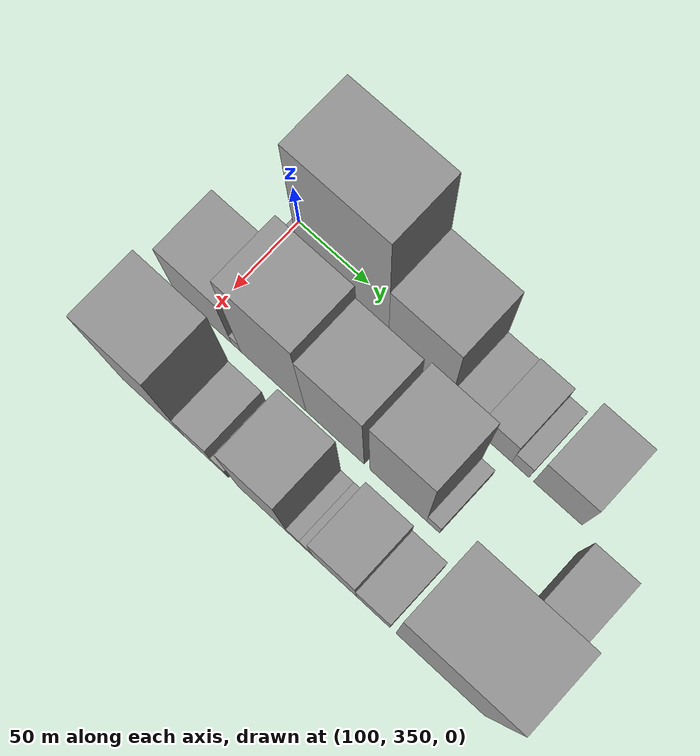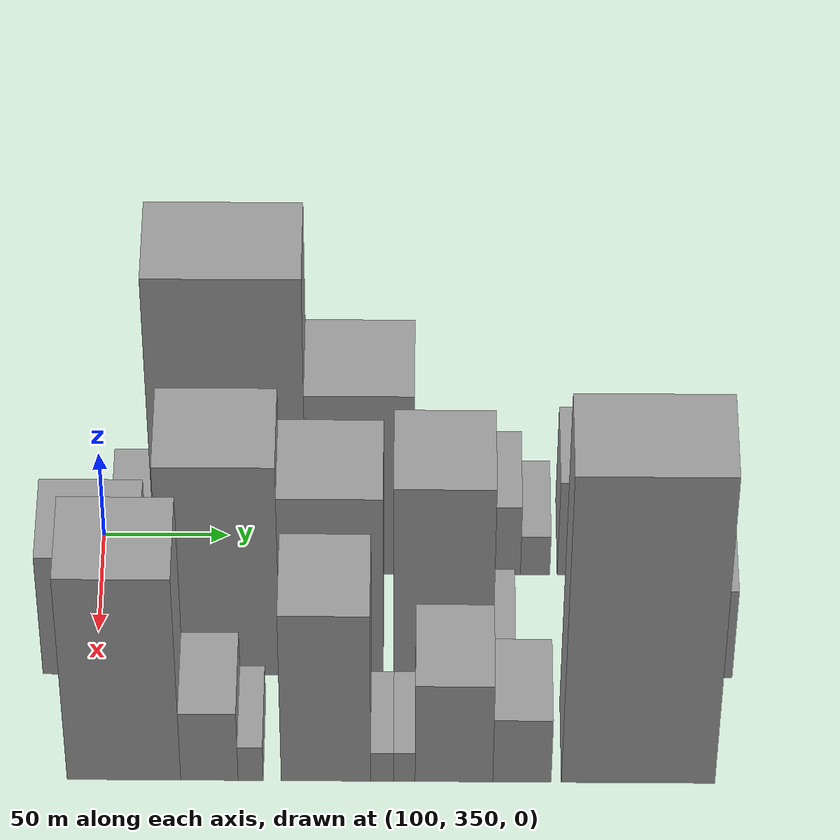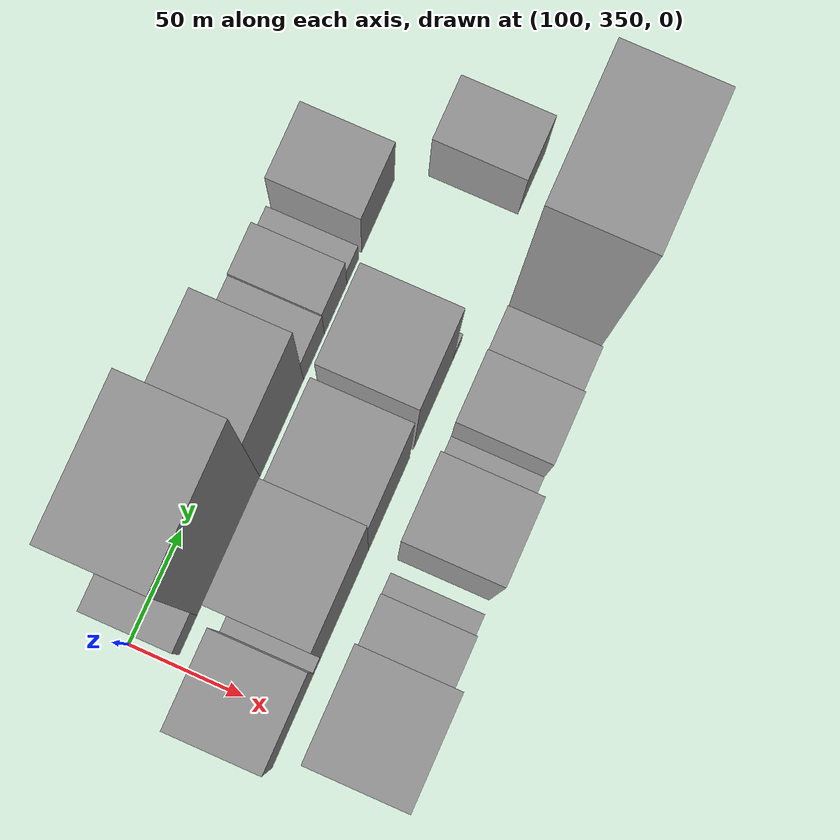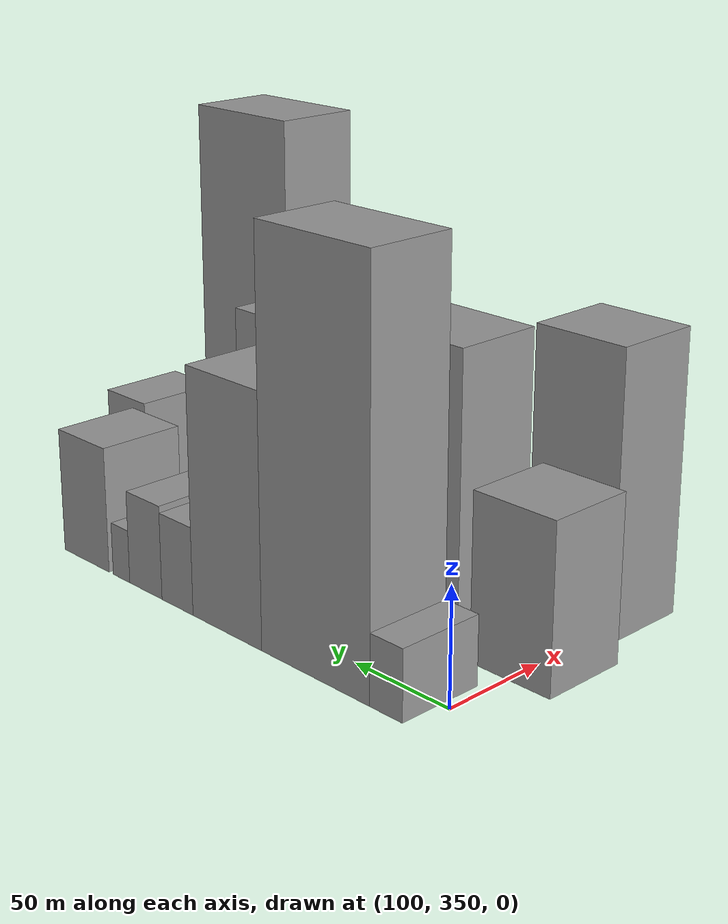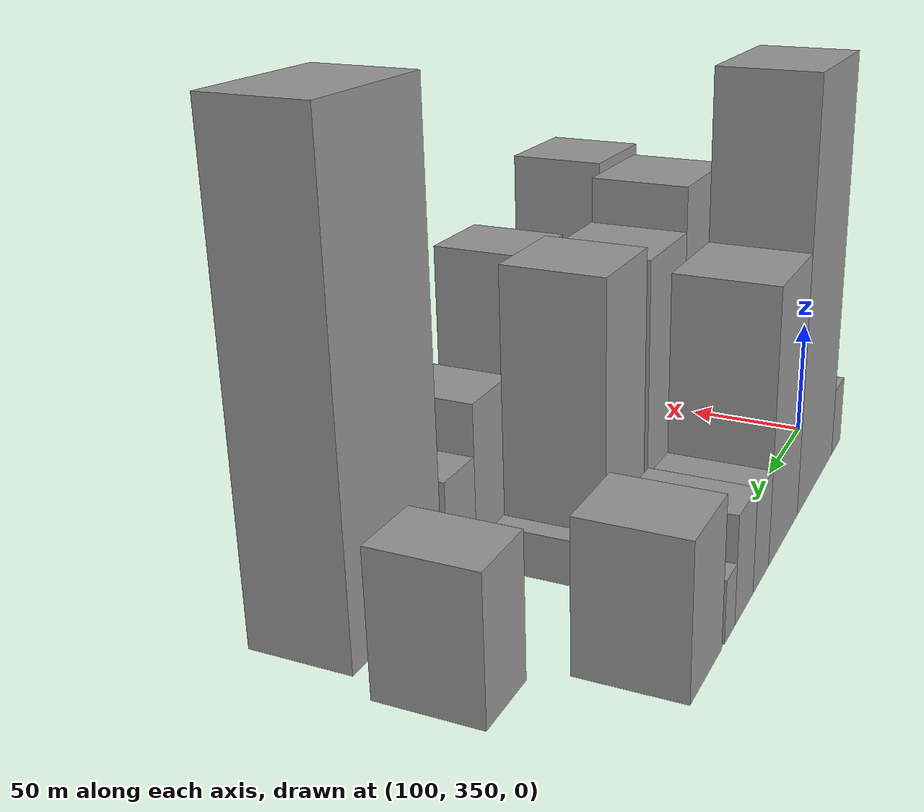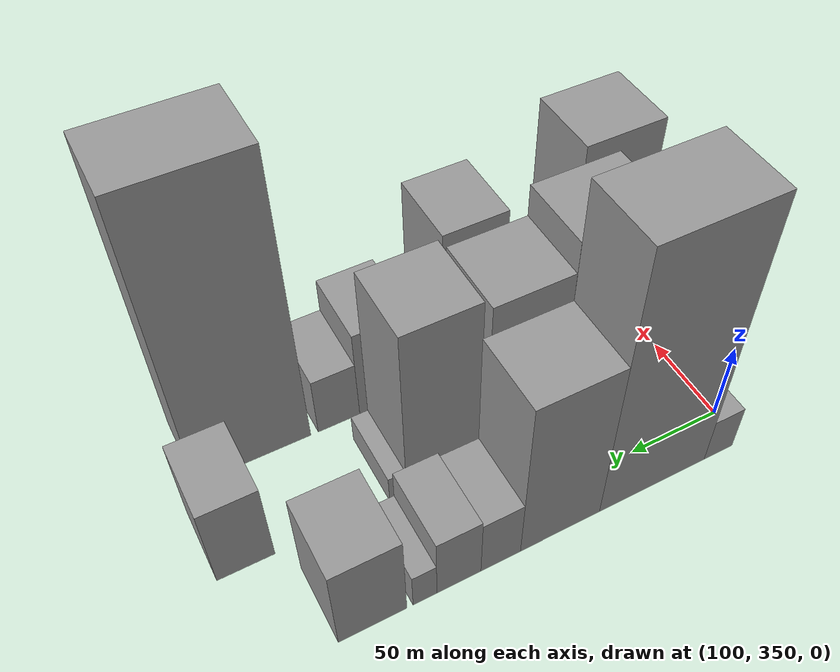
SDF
<sdf version="1.6">
 <world name="default">
  <model name="building_23">
   <static>1</static>
   <pose>100.0000 363.0550 0 0.000000 0.000000 0.000000</pose>
   <link name="link">
    <pose>0 0 15.00 0 0 0</pose>
    <collision name="collision"><geometry><box><size>40.0000 16.9841 30.0000</size></box></geometry></collision>
    <visual name="visual">
     <cast_shadows>0</cast_shadows>
     <geometry><box><size>40.0000 16.9841 30.0000</size></box></geometry>
     <material>
      <script>
       <uri>model://grey_wall/materials/scripts</uri>
       <uri>model://grey_wall/materials/textures</uri>
       <name>vrc/grey_wall</name>
      </script>
     </material>
    </visual>
   </link>
  </model>
  <model name="building_24">
   <static>1</static>
   <pose>100.0000 401.9607 0 0.000000 0.000000 0.000000</pose>
   <link name="link">
    <pose>0 0 87.00 0 0 0</pose>
    <collision name="collision"><geometry><box><size>40.0000 60.8273 174.0000</size></box></geometry></collision>
    <visual name="visual">
     <cast_shadows>0</cast_shadows>
     <geometry><box><size>40.0000 60.8273 174.0000</size></box></geometry>
     <material>
      <script>
       <uri>model://grey_wall/materials/scripts</uri>
       <uri>model://grey_wall/materials/textures</uri>
       <name>vrc/grey_wall</name>
      </script>
     </material>
    </visual>
   </link>
  </model>
  <model name="building_25">
   <static>1</static>
   <pose>100.0000 453.8556 0 0.000000 0.000000 0.000000</pose>
   <link name="link">
    <pose>0 0 54.00 0 0 0</pose>
    <collision name="collision"><geometry><box><size>40.0000 42.9626 108.0000</size></box></geometry></collision>
    <visual name="visual">
     <cast_shadows>0</cast_shadows>
     <geometry><box><size>40.0000 42.9626 108.0000</size></box></geometry>
     <material>
      <script>
       <uri>model://grey_wall/materials/scripts</uri>
       <uri>model://grey_wall/materials/textures</uri>
       <name>vrc/grey_wall</name>
      </script>
     </material>
    </visual>
   </link>
  </model>
  <model name="building_26">
   <static>1</static>
   <pose>100.0000 485.6503 0 0.000000 0.000000 0.000000</pose>
   <link name="link">
    <pose>0 0 19.50 0 0 0</pose>
    <collision name="collision"><geometry><box><size>40.0000 20.6268 39.0000</size></box></geometry></collision>
    <visual name="visual">
     <cast_shadows>0</cast_shadows>
     <geometry><box><size>40.0000 20.6268 39.0000</size></box></geometry>
     <material>
      <script>
       <uri>model://grey_wall/materials/scripts</uri>
       <uri>model://grey_wall/materials/textures</uri>
       <name>vrc/grey_wall</name>
      </script>
     </material>
    </visual>
   </link>
  </model>
  <model name="building_27">
   <static>1</static>
   <pose>100.0000 507.1280 0 0.000000 0.000000 0.000000</pose>
   <link name="link">
    <pose>0 0 21.00 0 0 0</pose>
    <collision name="collision"><geometry><box><size>40.0000 22.3287 42.0000</size></box></geometry></collision>
    <visual name="visual">
     <cast_shadows>0</cast_shadows>
     <geometry><box><size>40.0000 22.3287 42.0000</size></box></geometry>
     <material>
      <script>
       <uri>model://grey_wall/materials/scripts</uri>
       <uri>model://grey_wall/materials/textures</uri>
       <name>vrc/grey_wall</name>
      </script>
     </material>
    </visual>
   </link>
  </model>
  <model name="building_28">
   <static>1</static>
   <pose>100.0000 524.1989 0 0.000000 0.000000 0.000000</pose>
   <link name="link">
    <pose>0 0 12.00 0 0 0</pose>
    <collision name="collision"><geometry><box><size>40.0000 11.8132 24.0000</size></box></geometry></collision>
    <visual name="visual">
     <cast_shadows>0</cast_shadows>
     <geometry><box><size>40.0000 11.8132 24.0000</size></box></geometry>
     <material>
      <script>
       <uri>model://grey_wall/materials/scripts</uri>
       <uri>model://grey_wall/materials/textures</uri>
       <name>vrc/grey_wall</name>
      </script>
     </material>
    </visual>
   </link>
  </model>
  <model name="building_29">
   <static>1</static>
   <pose>100.0000 549.5464 0 0.000000 0.000000 0.000000</pose>
   <link name="link">
    <pose>0 0 28.50 0 0 0</pose>
    <collision name="collision"><geometry><box><size>40.0000 32.8817 57.0000</size></box></geometry></collision>
    <visual name="visual">
     <cast_shadows>0</cast_shadows>
     <geometry><box><size>40.0000 32.8817 57.0000</size></box></geometry>
     <material>
      <script>
       <uri>model://grey_wall/materials/scripts</uri>
       <uri>model://grey_wall/materials/textures</uri>
       <name>vrc/grey_wall</name>
      </script>
     </material>
    </visual>
   </link>
  </model>
  <model name="building_52">
   <static>1</static>
   <pose>152.0000 349.2109 0 0.000000 0.000000 0.000000</pose>
   <link name="link">
    <pose>0 0 36.00 0 0 0</pose>
    <collision name="collision"><geometry><box><size>40.0000 40.5409 72.0000</size></box></geometry></collision>
    <visual name="visual">
     <cast_shadows>0</cast_shadows>
     <geometry><box><size>40.0000 40.5409 72.0000</size></box></geometry>
     <material>
      <script>
       <uri>model://grey_wall/materials/scripts</uri>
       <uri>model://grey_wall/materials/textures</uri>
       <name>vrc/grey_wall</name>
      </script>
     </material>
    </visual>
   </link>
  </model>
  <model name="building_53">
   <static>1</static>
   <pose>152.0000 372.8206 0 0.000000 0.000000 0.000000</pose>
   <link name="link">
    <pose>0 0 7.50 0 0 0</pose>
    <collision name="collision"><geometry><box><size>40.0000 6.6785 15.0000</size></box></geometry></collision>
    <visual name="visual">
     <cast_shadows>0</cast_shadows>
     <geometry><box><size>40.0000 6.6785 15.0000</size></box></geometry>
     <material>
      <script>
       <uri>model://grey_wall/materials/scripts</uri>
       <uri>model://grey_wall/materials/textures</uri>
       <name>vrc/grey_wall</name>
      </script>
     </material>
    </visual>
   </link>
  </model>
  <model name="building_54">
   <static>1</static>
   <pose>152.0000 399.4634 0 0.000000 0.000000 0.000000</pose>
   <link name="link">
    <pose>0 0 63.00 0 0 0</pose>
    <collision name="collision"><geometry><box><size>40.0000 46.6072 126.0000</size></box></geometry></collision>
    <visual name="visual">
     <cast_shadows>0</cast_shadows>
     <geometry><box><size>40.0000 46.6072 126.0000</size></box></geometry>
     <material>
      <script>
       <uri>model://grey_wall/materials/scripts</uri>
       <uri>model://grey_wall/materials/textures</uri>
       <name>vrc/grey_wall</name>
      </script>
     </material>
    </visual>
   </link>
  </model>
  <model name="building_55">
   <static>1</static>
   <pose>152.0000 443.1474 0 0.000000 0.000000 0.000000</pose>
   <link name="link">
    <pose>0 0 54.00 0 0 0</pose>
    <collision name="collision"><geometry><box><size>40.0000 40.7608 108.0000</size></box></geometry></collision>
    <visual name="visual">
     <cast_shadows>0</cast_shadows>
     <geometry><box><size>40.0000 40.7608 108.0000</size></box></geometry>
     <material>
      <script>
       <uri>model://grey_wall/materials/scripts</uri>
       <uri>model://grey_wall/materials/textures</uri>
       <name>vrc/grey_wall</name>
      </script>
     </material>
    </visual>
   </link>
  </model>
  <model name="building_56">
   <static>1</static>
   <pose>152.0000 487.0982 0 0.000000 0.000000 0.000000</pose>
   <link name="link">
    <pose>0 0 57.00 0 0 0</pose>
    <collision name="collision"><geometry><box><size>40.0000 39.1408 114.0000</size></box></geometry></collision>
    <visual name="visual">
     <cast_shadows>0</cast_shadows>
     <geometry><box><size>40.0000 39.1408 114.0000</size></box></geometry>
     <material>
      <script>
       <uri>model://grey_wall/materials/scripts</uri>
       <uri>model://grey_wall/materials/textures</uri>
       <name>vrc/grey_wall</name>
      </script>
     </material>
    </visual>
   </link>
  </model>
  <model name="building_57">
   <static>1</static>
   <pose>152.0000 511.1476 0 0.000000 0.000000 0.000000</pose>
   <link name="link">
    <pose>0 0 9.00 0 0 0</pose>
    <collision name="collision"><geometry><box><size>40.0000 8.9579 18.0000</size></box></geometry></collision>
    <visual name="visual">
     <cast_shadows>0</cast_shadows>
     <geometry><box><size>40.0000 8.9579 18.0000</size></box></geometry>
     <material>
      <script>
       <uri>model://grey_wall/materials/scripts</uri>
       <uri>model://grey_wall/materials/textures</uri>
       <name>vrc/grey_wall</name>
      </script>
     </material>
    </visual>
   </link>
  </model>
  <model name="building_58">
   <static>1</static>
   <pose>152.0000 587.4810 0 0.000000 0.000000 0.000000</pose>
   <link name="link">
    <pose>0 0 27.00 0 0 0</pose>
    <collision name="collision"><geometry><box><size>40.0000 27.9030 54.0000</size></box></geometry></collision>
    <visual name="visual">
     <cast_shadows>0</cast_shadows>
     <geometry><box><size>40.0000 27.9030 54.0000</size></box></geometry>
     <material>
      <script>
       <uri>model://grey_wall/materials/scripts</uri>
       <uri>model://grey_wall/materials/textures</uri>
       <name>vrc/grey_wall</name>
      </script>
     </material>
    </visual>
   </link>
  </model>
  <model name="building_81">
   <static>1</static>
   <pose>204.0000 363.1764 0 0.000000 0.000000 0.000000</pose>
   <link name="link">
    <pose>0 0 61.50 0 0 0</pose>
    <collision name="collision"><geometry><box><size>40.0000 44.1395 123.0000</size></box></geometry></collision>
    <visual name="visual">
     <cast_shadows>0</cast_shadows>
     <geometry><box><size>40.0000 44.1395 123.0000</size></box></geometry>
     <material>
      <script>
       <uri>model://grey_wall/materials/scripts</uri>
       <uri>model://grey_wall/materials/textures</uri>
       <name>vrc/grey_wall</name>
      </script>
     </material>
    </visual>
   </link>
  </model>
  <model name="building_82">
   <static>1</static>
   <pose>204.0000 396.3996 0 0.000000 0.000000 0.000000</pose>
   <link name="link">
    <pose>0 0 21.00 0 0 0</pose>
    <collision name="collision"><geometry><box><size>40.0000 22.3069 42.0000</size></box></geometry></collision>
    <visual name="visual">
     <cast_shadows>0</cast_shadows>
     <geometry><box><size>40.0000 22.3069 42.0000</size></box></geometry>
     <material>
      <script>
       <uri>model://grey_wall/materials/scripts</uri>
       <uri>model://grey_wall/materials/textures</uri>
       <name>vrc/grey_wall</name>
      </script>
     </material>
    </visual>
   </link>
  </model>
  <model name="building_83">
   <static>1</static>
   <pose>204.0000 412.4388 0 0.000000 0.000000 0.000000</pose>
   <link name="link">
    <pose>0 0 10.50 0 0 0</pose>
    <collision name="collision"><geometry><box><size>40.0000 9.7714 21.0000</size></box></geometry></collision>
    <visual name="visual">
     <cast_shadows>0</cast_shadows>
     <geometry><box><size>40.0000 9.7714 21.0000</size></box></geometry>
     <material>
      <script>
       <uri>model://grey_wall/materials/scripts</uri>
       <uri>model://grey_wall/materials/textures</uri>
       <name>vrc/grey_wall</name>
      </script>
     </material>
    </visual>
   </link>
  </model>
  <model name="building_84">
   <static>1</static>
   <pose>204.0000 441.6722 0 0.000000 0.000000 0.000000</pose>
   <link name="link">
    <pose>0 0 51.00 0 0 0</pose>
    <collision name="collision"><geometry><box><size>40.0000 34.6955 102.0000</size></box></geometry></collision>
    <visual name="visual">
     <cast_shadows>0</cast_shadows>
     <geometry><box><size>40.0000 34.6955 102.0000</size></box></geometry>
     <material>
      <script>
       <uri>model://grey_wall/materials/scripts</uri>
       <uri>model://grey_wall/materials/textures</uri>
       <name>vrc/grey_wall</name>
      </script>
     </material>
    </visual>
   </link>
  </model>
  <model name="building_85">
   <static>1</static>
   <pose>204.0000 463.4466 0 0.000000 0.000000 0.000000</pose>
   <link name="link">
    <pose>0 0 9.00 0 0 0</pose>
    <collision name="collision"><geometry><box><size>40.0000 8.8532 18.0000</size></box></geometry></collision>
    <visual name="visual">
     <cast_shadows>0</cast_shadows>
     <geometry><box><size>40.0000 8.8532 18.0000</size></box></geometry>
     <material>
      <script>
       <uri>model://grey_wall/materials/scripts</uri>
       <uri>model://grey_wall/materials/textures</uri>
       <name>vrc/grey_wall</name>
      </script>
     </material>
    </visual>
   </link>
  </model>
  <model name="building_86">
   <static>1</static>
   <pose>204.0000 472.0751 0 0.000000 0.000000 0.000000</pose>
   <link name="link">
    <pose>0 0 9.00 0 0 0</pose>
    <collision name="collision"><geometry><box><size>40.0000 8.4040 18.0000</size></box></geometry></collision>
    <visual name="visual">
     <cast_shadows>0</cast_shadows>
     <geometry><box><size>40.0000 8.4040 18.0000</size></box></geometry>
     <material>
      <script>
       <uri>model://grey_wall/materials/scripts</uri>
       <uri>model://grey_wall/materials/textures</uri>
       <name>vrc/grey_wall</name>
      </script>
     </material>
    </visual>
   </link>
  </model>
  <model name="building_87">
   <static>1</static>
   <pose>204.0000 491.3725 0 0.000000 0.000000 0.000000</pose>
   <link name="link">
    <pose>0 0 30.00 0 0 0</pose>
    <collision name="collision"><geometry><box><size>40.0000 30.1907 60.0000</size></box></geometry></collision>
    <visual name="visual">
     <cast_shadows>0</cast_shadows>
     <geometry><box><size>40.0000 30.1907 60.0000</size></box></geometry>
     <material>
      <script>
       <uri>model://grey_wall/materials/scripts</uri>
       <uri>model://grey_wall/materials/textures</uri>
       <name>vrc/grey_wall</name>
      </script>
     </material>
    </visual>
   </link>
  </model>
  <model name="building_88">
   <static>1</static>
   <pose>204.0000 517.8016 0 0.000000 0.000000 0.000000</pose>
   <link name="link">
    <pose>0 0 19.50 0 0 0</pose>
    <collision name="collision"><geometry><box><size>40.0000 22.6675 39.0000</size></box></geometry></collision>
    <visual name="visual">
     <cast_shadows>0</cast_shadows>
     <geometry><box><size>40.0000 22.6675 39.0000</size></box></geometry>
     <material>
      <script>
       <uri>model://grey_wall/materials/scripts</uri>
       <uri>model://grey_wall/materials/textures</uri>
       <name>vrc/grey_wall</name>
      </script>
     </material>
    </visual>
   </link>
  </model>
  <model name="building_89">
   <static>1</static>
   <pose>204.0000 562.9286 0 0.000000 0.000000 0.000000</pose>
   <link name="link">
    <pose>0 0 91.50 0 0 0</pose>
    <collision name="collision"><geometry><box><size>40.0000 59.5865 183.0000</size></box></geometry></collision>
    <visual name="visual">
     <cast_shadows>0</cast_shadows>
     <geometry><box><size>40.0000 59.5865 183.0000</size></box></geometry>
     <material>
      <script>
       <uri>model://grey_wall/materials/scripts</uri>
       <uri>model://grey_wall/materials/textures</uri>
       <name>vrc/grey_wall</name>
      </script>
     </material>
    </visual>
   </link>
  </model>
 </world>
</sdf>
